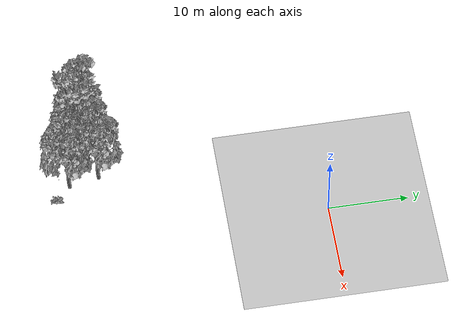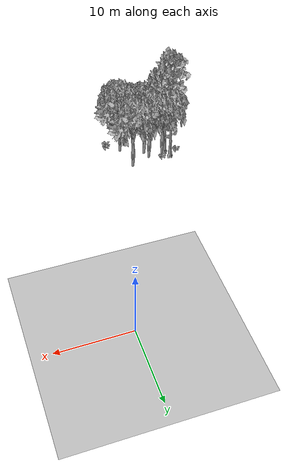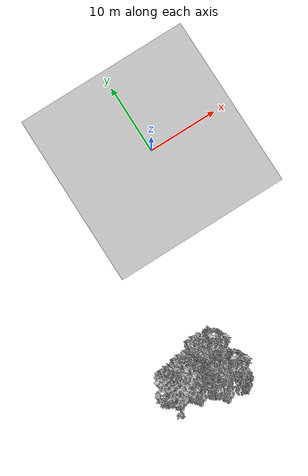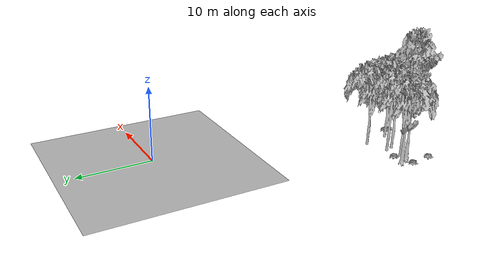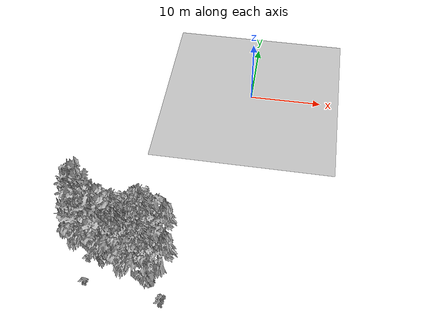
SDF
<sdf version="1.7">
 <world name="default">
  <model name="ground_plane">
   <static>1</static>
   <link name="link">
    <collision name="collision">
     <pose>-50 0 0 0 -0 0</pose>
     <geometry><plane><normal>0 0 1</normal><size>80 80</size></plane></geometry>
     <surface><contact><ode><min_depth>0.01</min_depth><max_vel>0</max_vel></ode></contact></surface>
    </collision>
    <visual name="grass">
     <cast_shadows>0</cast_shadows>
     <geometry>
      <mesh>
       <scale>0.46714285714285714 0.46714285714285714 0.1</scale>
       <uri>file://grass_plane/meshes/grass_plane.dae</uri>
      </mesh>
     </geometry>
    </visual>
   </link>
  </model>
  <model name="Tree 26">
   <static>1</static>
   <pose>-11.443818965885779 -29.617075454050195 0 1.57079 -0 0</pose>
   <link name="link">
    <collision name="collision">
     <geometry><mesh><scale>3.5 5 3.5</scale><uri>model://tree_2/meshes/tree_2.obj</uri></mesh></geometry>
    </collision>
    <visual name="visual">
     <geometry><mesh><scale>3.5 5 3.5</scale><uri>model://tree_2/meshes/tree_2.obj</uri></mesh></geometry>
    </visual>
   </link>
  </model>
  <model name="Tree 32">
   <static>1</static>
   <pose>-11.804930314046253 -28.51035392745039 0 1.57079 -0 0</pose>
   <link name="link">
    <collision name="collision">
     <geometry><mesh><scale>3.5 5 3.5</scale><uri>model://tree_2/meshes/tree_2.obj</uri></mesh></geometry>
    </collision>
    <visual name="visual">
     <geometry><mesh><scale>3.5 5 3.5</scale><uri>model://tree_2/meshes/tree_2.obj</uri></mesh></geometry>
    </visual>
   </link>
  </model>
  <model name="Tree 60">
   <static>1</static>
   <pose>-14.461916604771211 -29.360938955560307 0 1.57079 -0 0</pose>
   <link name="link">
    <collision name="collision">
     <geometry><mesh><scale>3.5 5 3.5</scale><uri>model://tree_9/meshes/tree_9.obj</uri></mesh></geometry>
    </collision>
    <visual name="visual">
     <geometry><mesh><scale>3.5 5 3.5</scale><uri>model://tree_9/meshes/tree_9.obj</uri></mesh></geometry>
    </visual>
   </link>
  </model>
  <model name="Tree 165">
   <static>1</static>
   <pose>-8.251493703336507 -31.2115668990386 0 1.57079 -0 0</pose>
   <link name="link">
    <collision name="collision">
     <geometry><mesh><scale>3.5 5 3.5</scale><uri>model://tree_2/meshes/tree_2.obj</uri></mesh></geometry>
    </collision>
    <visual name="visual">
     <geometry><mesh><scale>3.5 5 3.5</scale><uri>model://tree_2/meshes/tree_2.obj</uri></mesh></geometry>
    </visual>
   </link>
  </model>
  <model name="Tree 169">
   <static>1</static>
   <pose>-13.94090218870355 -28.874111237119003 0 1.57079 -0 0</pose>
   <link name="link">
    <collision name="collision">
     <geometry><mesh><scale>3.5 5 3.5</scale><uri>model://tree_2/meshes/tree_2.obj</uri></mesh></geometry>
    </collision>
    <visual name="visual">
     <geometry><mesh><scale>3.5 5 3.5</scale><uri>model://tree_2/meshes/tree_2.obj</uri></mesh></geometry>
    </visual>
   </link>
  </model>
  <model name="Tree 551">
   <static>1</static>
   <pose>-14.92419343636628 -28.21632507281363 0 1.57079 -0 0</pose>
   <link name="link">
    <collision name="collision">
     <geometry><mesh><scale>3.5 5 3.5</scale><uri>model://tree_9/meshes/tree_9.obj</uri></mesh></geometry>
    </collision>
    <visual name="visual">
     <geometry><mesh><scale>3.5 5 3.5</scale><uri>model://tree_9/meshes/tree_9.obj</uri></mesh></geometry>
    </visual>
   </link>
  </model>
  <model name="Tree 592">
   <static>1</static>
   <pose>-9.02475305884266 -27.48115361176066 0 1.57079 -0 0</pose>
   <link name="link">
    <collision name="collision">
     <geometry><mesh><scale>3.5 5 3.5</scale><uri>model://tree_2/meshes/tree_2.obj</uri></mesh></geometry>
    </collision>
    <visual name="visual">
     <geometry><mesh><scale>3.5 5 3.5</scale><uri>model://tree_2/meshes/tree_2.obj</uri></mesh></geometry>
    </visual>
   </link>
  </model>
  <model name="Bush 221">
   <static>1</static>
   <pose>-13.662643177769183 -28.101176088754176 0 1.57079 -0 0</pose>
   <link name="link">
    <collision name="collision">
     <geometry><mesh><scale>2 2 2</scale><uri>model://bush_2/meshes/bush_2.obj</uri></mesh></geometry>
     <surface><contact><collide_without_contact>false</collide_without_contact></contact></surface>
    </collision>
    <visual name="visual">
     <geometry><mesh><scale>2 2 2</scale><uri>model://bush_2/meshes/bush_2.obj</uri></mesh></geometry>
    </visual>
   </link>
  </model>
  <model name="Bush 245">
   <static>1</static>
   <pose>-6.553417445850606 -33.3281960241073 0 1.57079 -0 0</pose>
   <link name="link">
    <collision name="collision">
     <geometry><mesh><scale>2 2 2</scale><uri>model://bush_2/meshes/bush_2.obj</uri></mesh></geometry>
     <surface><contact><collide_without_contact>false</collide_without_contact></contact></surface>
    </collision>
    <visual name="visual">
     <geometry><mesh><scale>2 2 2</scale><uri>model://bush_2/meshes/bush_2.obj</uri></mesh></geometry>
    </visual>
   </link>
  </model>
  <model name="Bush 389">
   <static>1</static>
   <pose>-15.766825921570714 -31.985475300716033 0 1.57079 -0 0</pose>
   <link name="link">
    <collision name="collision">
     <geometry><mesh><scale>2 2 2</scale><uri>model://bush_2/meshes/bush_2.obj</uri></mesh></geometry>
     <surface><contact><collide_without_contact>false</collide_without_contact></contact></surface>
    </collision>
    <visual name="visual">
     <geometry><mesh><scale>2 2 2</scale><uri>model://bush_2/meshes/bush_2.obj</uri></mesh></geometry>
    </visual>
   </link>
  </model>
  <model name="Bush 501">
   <static>1</static>
   <pose>-16.17098546151393 -29.039715198619504 0 1.57079 -0 0</pose>
   <link name="link">
    <collision name="collision">
     <geometry><mesh><scale>2 2 2</scale><uri>model://bush_2/meshes/bush_2.obj</uri></mesh></geometry>
     <surface><contact><collide_without_contact>false</collide_without_contact></contact></surface>
    </collision>
    <visual name="visual">
     <geometry><mesh><scale>2 2 2</scale><uri>model://bush_2/meshes/bush_2.obj</uri></mesh></geometry>
    </visual>
   </link>
  </model>
  <model name="Bush 639">
   <static>1</static>
   <pose>-6.462196014152376 -32.70754440702256 0 1.57079 -0 0</pose>
   <link name="link">
    <collision name="collision">
     <geometry><mesh><scale>2 2 2</scale><uri>model://bush_2/meshes/bush_2.obj</uri></mesh></geometry>
     <surface><contact><collide_without_contact>false</collide_without_contact></contact></surface>
    </collision>
    <visual name="visual">
     <geometry><mesh><scale>2 2 2</scale><uri>model://bush_2/meshes/bush_2.obj</uri></mesh></geometry>
    </visual>
   </link>
  </model>
 </world>
</sdf>
